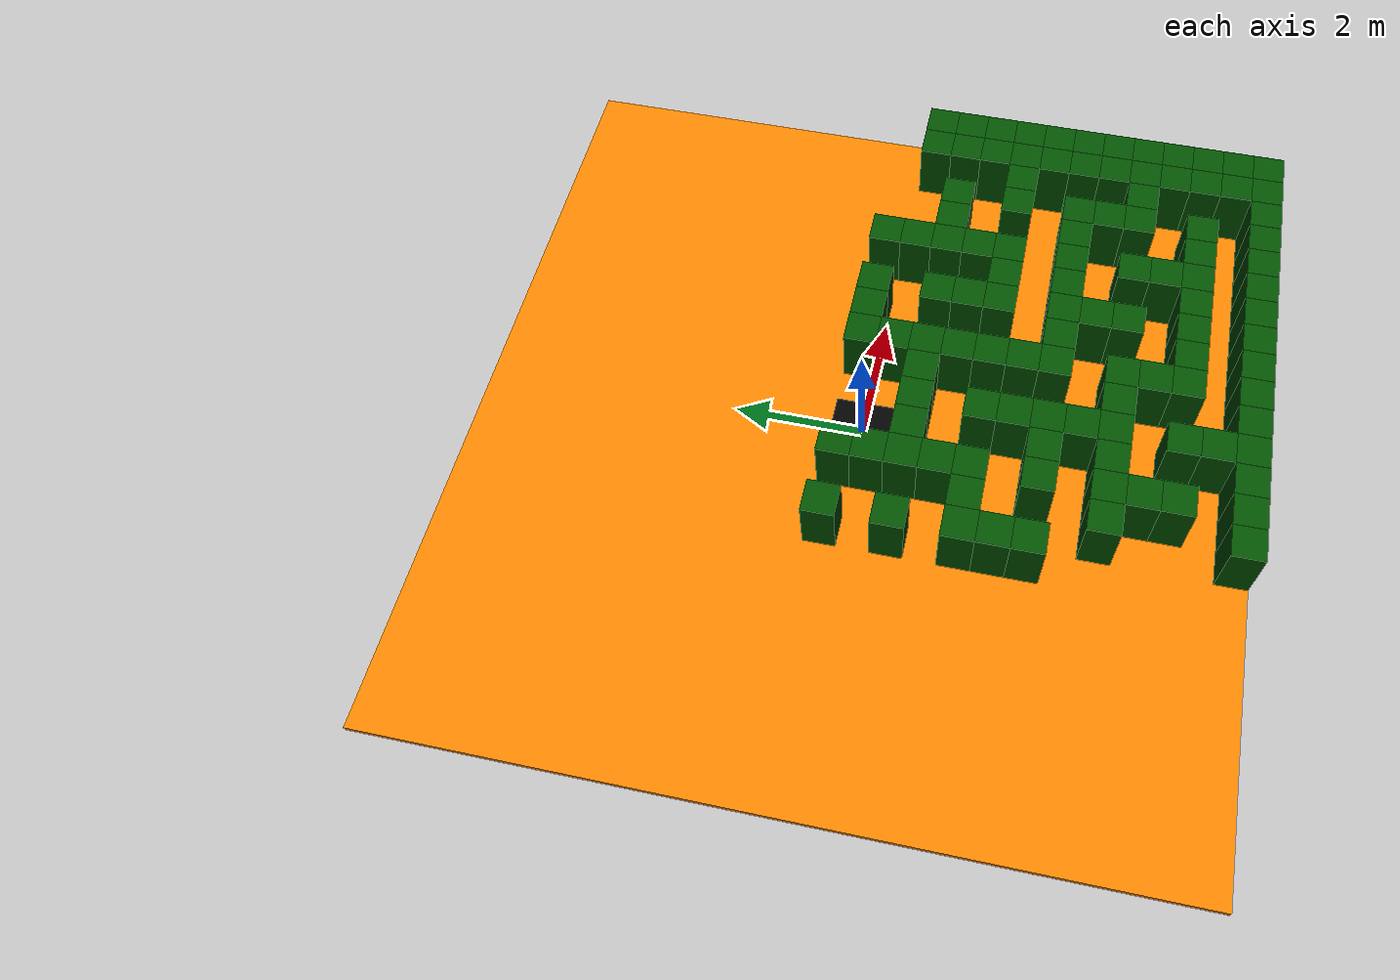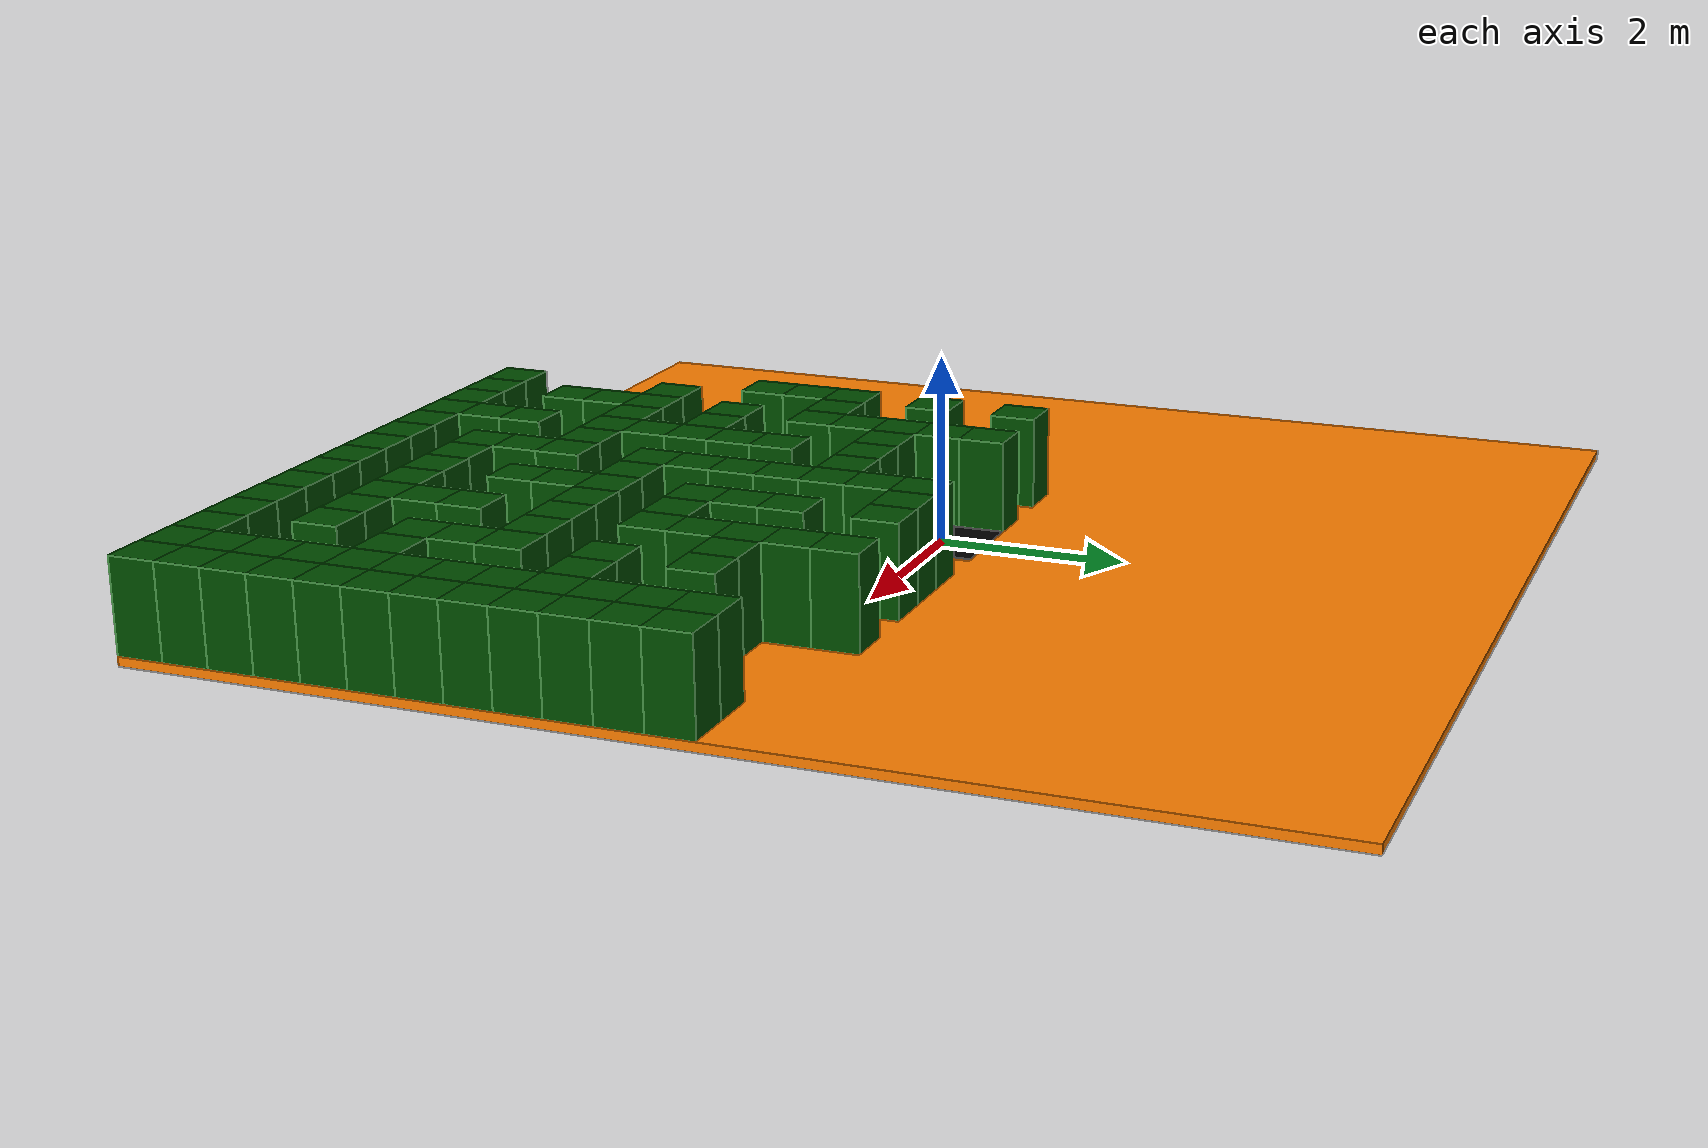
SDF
<sdf version="1.6">
 <world name="turtlebot3_maze">
  <model name="maze_floor_debug">
   <static>true</static>
   <pose>0 0 -0.05 0 0 0</pose>
   <link name="link">
    <collision name="collision"><geometry><box><size>12 12 0.1</size></box></geometry></collision>
    <visual name="orange_visual">
     <geometry><box><size>12 12 0.1</size></box></geometry>
     <material><ambient>1 0.5 0 1</ambient><diffuse>1 0.5 0 1</diffuse></material>
    </visual>
    <visual name="black_center">
     <pose>0 0 0.061 0 0 0</pose>
     <geometry><box><size>1 1 0.02</size></box></geometry>
     <material><ambient>0 0 0 1</ambient><diffuse>0 0 0 1</diffuse></material>
    </visual>
   </link>
  </model>
  <model name="wall_9_0">
   <static>true</static>
   <pose>-1.25 -5.75 0.5 0 0 0</pose>
   <link name="link">
    <collision name="collision"><geometry><box><size>0.5 0.5 1.0</size></box></geometry></collision>
    <visual name="visual">
     <geometry><box><size>0.5 0.5 1.0</size></box></geometry>
     <material><ambient>0 0.3 0 1</ambient><diffuse>0 0.3 0 1</diffuse></material>
    </visual>
   </link>
  </model>
  <model name="wall_10_0">
   <static>true</static>
   <pose>-0.75 -5.75 0.5 0 0 0</pose>
   <link name="link">
    <collision name="collision"><geometry><box><size>0.5 0.5 1.0</size></box></geometry></collision>
    <visual name="visual">
     <geometry><box><size>0.5 0.5 1.0</size></box></geometry>
     <material><ambient>0 0.3 0 1</ambient><diffuse>0 0.3 0 1</diffuse></material>
    </visual>
   </link>
  </model>
  <model name="wall_11_0">
   <static>true</static>
   <pose>-0.25 -5.75 0.5 0 0 0</pose>
   <link name="link">
    <collision name="collision"><geometry><box><size>0.5 0.5 1.0</size></box></geometry></collision>
    <visual name="visual">
     <geometry><box><size>0.5 0.5 1.0</size></box></geometry>
     <material><ambient>0 0.3 0 1</ambient><diffuse>0 0.3 0 1</diffuse></material>
    </visual>
   </link>
  </model>
  <model name="wall_12_0">
   <static>true</static>
   <pose>0.25 -5.75 0.5 0 0 0</pose>
   <link name="link">
    <collision name="collision"><geometry><box><size>0.5 0.5 1.0</size></box></geometry></collision>
    <visual name="visual">
     <geometry><box><size>0.5 0.5 1.0</size></box></geometry>
     <material><ambient>0 0.3 0 1</ambient><diffuse>0 0.3 0 1</diffuse></material>
    </visual>
   </link>
  </model>
  <model name="wall_13_0">
   <static>true</static>
   <pose>0.75 -5.75 0.5 0 0 0</pose>
   <link name="link">
    <collision name="collision"><geometry><box><size>0.5 0.5 1.0</size></box></geometry></collision>
    <visual name="visual">
     <geometry><box><size>0.5 0.5 1.0</size></box></geometry>
     <material><ambient>0 0.3 0 1</ambient><diffuse>0 0.3 0 1</diffuse></material>
    </visual>
   </link>
  </model>
  <model name="wall_14_0">
   <static>true</static>
   <pose>1.25 -5.75 0.5 0 0 0</pose>
   <link name="link">
    <collision name="collision"><geometry><box><size>0.5 0.5 1.0</size></box></geometry></collision>
    <visual name="visual">
     <geometry><box><size>0.5 0.5 1.0</size></box></geometry>
     <material><ambient>0 0.3 0 1</ambient><diffuse>0 0.3 0 1</diffuse></material>
    </visual>
   </link>
  </model>
  <model name="wall_15_0">
   <static>true</static>
   <pose>1.75 -5.75 0.5 0 0 0</pose>
   <link name="link">
    <collision name="collision"><geometry><box><size>0.5 0.5 1.0</size></box></geometry></collision>
    <visual name="visual">
     <geometry><box><size>0.5 0.5 1.0</size></box></geometry>
     <material><ambient>0 0.3 0 1</ambient><diffuse>0 0.3 0 1</diffuse></material>
    </visual>
   </link>
  </model>
  <model name="wall_16_0">
   <static>true</static>
   <pose>2.25 -5.75 0.5 0 0 0</pose>
   <link name="link">
    <collision name="collision"><geometry><box><size>0.5 0.5 1.0</size></box></geometry></collision>
    <visual name="visual">
     <geometry><box><size>0.5 0.5 1.0</size></box></geometry>
     <material><ambient>0 0.3 0 1</ambient><diffuse>0 0.3 0 1</diffuse></material>
    </visual>
   </link>
  </model>
  <model name="wall_17_0">
   <static>true</static>
   <pose>2.75 -5.75 0.5 0 0 0</pose>
   <link name="link">
    <collision name="collision"><geometry><box><size>0.5 0.5 1.0</size></box></geometry></collision>
    <visual name="visual">
     <geometry><box><size>0.5 0.5 1.0</size></box></geometry>
     <material><ambient>0 0.3 0 1</ambient><diffuse>0 0.3 0 1</diffuse></material>
    </visual>
   </link>
  </model>
  <model name="wall_18_0">
   <static>true</static>
   <pose>3.25 -5.75 0.5 0 0 0</pose>
   <link name="link">
    <collision name="collision"><geometry><box><size>0.5 0.5 1.0</size></box></geometry></collision>
    <visual name="visual">
     <geometry><box><size>0.5 0.5 1.0</size></box></geometry>
     <material><ambient>0 0.3 0 1</ambient><diffuse>0 0.3 0 1</diffuse></material>
    </visual>
   </link>
  </model>
  <model name="wall_19_0">
   <static>true</static>
   <pose>3.75 -5.75 0.5 0 0 0</pose>
   <link name="link">
    <collision name="collision"><geometry><box><size>0.5 0.5 1.0</size></box></geometry></collision>
    <visual name="visual">
     <geometry><box><size>0.5 0.5 1.0</size></box></geometry>
     <material><ambient>0 0.3 0 1</ambient><diffuse>0 0.3 0 1</diffuse></material>
    </visual>
   </link>
  </model>
  <model name="wall_20_0">
   <static>true</static>
   <pose>4.25 -5.75 0.5 0 0 0</pose>
   <link name="link">
    <collision name="collision"><geometry><box><size>0.5 0.5 1.0</size></box></geometry></collision>
    <visual name="visual">
     <geometry><box><size>0.5 0.5 1.0</size></box></geometry>
     <material><ambient>0 0.3 0 1</ambient><diffuse>0 0.3 0 1</diffuse></material>
    </visual>
   </link>
  </model>
  <model name="wall_21_0">
   <static>true</static>
   <pose>4.75 -5.75 0.5 0 0 0</pose>
   <link name="link">
    <collision name="collision"><geometry><box><size>0.5 0.5 1.0</size></box></geometry></collision>
    <visual name="visual">
     <geometry><box><size>0.5 0.5 1.0</size></box></geometry>
     <material><ambient>0 0.3 0 1</ambient><diffuse>0 0.3 0 1</diffuse></material>
    </visual>
   </link>
  </model>
  <model name="wall_22_0">
   <static>true</static>
   <pose>5.25 -5.75 0.5 0 0 0</pose>
   <link name="link">
    <collision name="collision"><geometry><box><size>0.5 0.5 1.0</size></box></geometry></collision>
    <visual name="visual">
     <geometry><box><size>0.5 0.5 1.0</size></box></geometry>
     <material><ambient>0 0.3 0 1</ambient><diffuse>0 0.3 0 1</diffuse></material>
    </visual>
   </link>
  </model>
  <model name="wall_23_0">
   <static>true</static>
   <pose>5.75 -5.75 0.5 0 0 0</pose>
   <link name="link">
    <collision name="collision"><geometry><box><size>0.5 0.5 1.0</size></box></geometry></collision>
    <visual name="visual">
     <geometry><box><size>0.5 0.5 1.0</size></box></geometry>
     <material><ambient>0 0.3 0 1</ambient><diffuse>0 0.3 0 1</diffuse></material>
    </visual>
   </link>
  </model>
  <model name="wall_12_1">
   <static>true</static>
   <pose>0.25 -5.25 0.5 0 0 0</pose>
   <link name="link">
    <collision name="collision"><geometry><box><size>0.5 0.5 1.0</size></box></geometry></collision>
    <visual name="visual">
     <geometry><box><size>0.5 0.5 1.0</size></box></geometry>
     <material><ambient>0 0.3 0 1</ambient><diffuse>0 0.3 0 1</diffuse></material>
    </visual>
   </link>
  </model>
  <model name="wall_22_1">
   <static>true</static>
   <pose>5.25 -5.25 0.5 0 0 0</pose>
   <link name="link">
    <collision name="collision"><geometry><box><size>0.5 0.5 1.0</size></box></geometry></collision>
    <visual name="visual">
     <geometry><box><size>0.5 0.5 1.0</size></box></geometry>
     <material><ambient>0 0.3 0 1</ambient><diffuse>0 0.3 0 1</diffuse></material>
    </visual>
   </link>
  </model>
  <model name="wall_23_1">
   <static>true</static>
   <pose>5.75 -5.25 0.5 0 0 0</pose>
   <link name="link">
    <collision name="collision"><geometry><box><size>0.5 0.5 1.0</size></box></geometry></collision>
    <visual name="visual">
     <geometry><box><size>0.5 0.5 1.0</size></box></geometry>
     <material><ambient>0 0.3 0 1</ambient><diffuse>0 0.3 0 1</diffuse></material>
    </visual>
   </link>
  </model>
  <model name="wall_10_2">
   <static>true</static>
   <pose>-0.75 -4.75 0.5 0 0 0</pose>
   <link name="link">
    <collision name="collision"><geometry><box><size>0.5 0.5 1.0</size></box></geometry></collision>
    <visual name="visual">
     <geometry><box><size>0.5 0.5 1.0</size></box></geometry>
     <material><ambient>0 0.3 0 1</ambient><diffuse>0 0.3 0 1</diffuse></material>
    </visual>
   </link>
  </model>
  <model name="wall_12_2">
   <static>true</static>
   <pose>0.25 -4.75 0.5 0 0 0</pose>
   <link name="link">
    <collision name="collision"><geometry><box><size>0.5 0.5 1.0</size></box></geometry></collision>
    <visual name="visual">
     <geometry><box><size>0.5 0.5 1.0</size></box></geometry>
     <material><ambient>0 0.3 0 1</ambient><diffuse>0 0.3 0 1</diffuse></material>
    </visual>
   </link>
  </model>
  <model name="wall_14_2">
   <static>true</static>
   <pose>1.25 -4.75 0.5 0 0 0</pose>
   <link name="link">
    <collision name="collision"><geometry><box><size>0.5 0.5 1.0</size></box></geometry></collision>
    <visual name="visual">
     <geometry><box><size>0.5 0.5 1.0</size></box></geometry>
     <material><ambient>0 0.3 0 1</ambient><diffuse>0 0.3 0 1</diffuse></material>
    </visual>
   </link>
  </model>
  <model name="wall_15_2">
   <static>true</static>
   <pose>1.75 -4.75 0.5 0 0 0</pose>
   <link name="link">
    <collision name="collision"><geometry><box><size>0.5 0.5 1.0</size></box></geometry></collision>
    <visual name="visual">
     <geometry><box><size>0.5 0.5 1.0</size></box></geometry>
     <material><ambient>0 0.3 0 1</ambient><diffuse>0 0.3 0 1</diffuse></material>
    </visual>
   </link>
  </model>
  <model name="wall_16_2">
   <static>true</static>
   <pose>2.25 -4.75 0.5 0 0 0</pose>
   <link name="link">
    <collision name="collision"><geometry><box><size>0.5 0.5 1.0</size></box></geometry></collision>
    <visual name="visual">
     <geometry><box><size>0.5 0.5 1.0</size></box></geometry>
     <material><ambient>0 0.3 0 1</ambient><diffuse>0 0.3 0 1</diffuse></material>
    </visual>
   </link>
  </model>
  <model name="wall_17_2">
   <static>true</static>
   <pose>2.75 -4.75 0.5 0 0 0</pose>
   <link name="link">
    <collision name="collision"><geometry><box><size>0.5 0.5 1.0</size></box></geometry></collision>
    <visual name="visual">
     <geometry><box><size>0.5 0.5 1.0</size></box></geometry>
     <material><ambient>0 0.3 0 1</ambient><diffuse>0 0.3 0 1</diffuse></material>
    </visual>
   </link>
  </model>
  <model name="wall_18_2">
   <static>true</static>
   <pose>3.25 -4.75 0.5 0 0 0</pose>
   <link name="link">
    <collision name="collision"><geometry><box><size>0.5 0.5 1.0</size></box></geometry></collision>
    <visual name="visual">
     <geometry><box><size>0.5 0.5 1.0</size></box></geometry>
     <material><ambient>0 0.3 0 1</ambient><diffuse>0 0.3 0 1</diffuse></material>
    </visual>
   </link>
  </model>
  <model name="wall_19_2">
   <static>true</static>
   <pose>3.75 -4.75 0.5 0 0 0</pose>
   <link name="link">
    <collision name="collision"><geometry><box><size>0.5 0.5 1.0</size></box></geometry></collision>
    <visual name="visual">
     <geometry><box><size>0.5 0.5 1.0</size></box></geometry>
     <material><ambient>0 0.3 0 1</ambient><diffuse>0 0.3 0 1</diffuse></material>
    </visual>
   </link>
  </model>
  <model name="wall_20_2">
   <static>true</static>
   <pose>4.25 -4.75 0.5 0 0 0</pose>
   <link name="link">
    <collision name="collision"><geometry><box><size>0.5 0.5 1.0</size></box></geometry></collision>
    <visual name="visual">
     <geometry><box><size>0.5 0.5 1.0</size></box></geometry>
     <material><ambient>0 0.3 0 1</ambient><diffuse>0 0.3 0 1</diffuse></material>
    </visual>
   </link>
  </model>
  <model name="wall_22_2">
   <static>true</static>
   <pose>5.25 -4.75 0.5 0 0 0</pose>
   <link name="link">
    <collision name="collision"><geometry><box><size>0.5 0.5 1.0</size></box></geometry></collision>
    <visual name="visual">
     <geometry><box><size>0.5 0.5 1.0</size></box></geometry>
     <material><ambient>0 0.3 0 1</ambient><diffuse>0 0.3 0 1</diffuse></material>
    </visual>
   </link>
  </model>
  <model name="wall_23_2">
   <static>true</static>
   <pose>5.75 -4.75 0.5 0 0 0</pose>
   <link name="link">
    <collision name="collision"><geometry><box><size>0.5 0.5 1.0</size></box></geometry></collision>
    <visual name="visual">
     <geometry><box><size>0.5 0.5 1.0</size></box></geometry>
     <material><ambient>0 0.3 0 1</ambient><diffuse>0 0.3 0 1</diffuse></material>
    </visual>
   </link>
  </model>
  <model name="wall_10_3">
   <static>true</static>
   <pose>-0.75 -4.25 0.5 0 0 0</pose>
   <link name="link">
    <collision name="collision"><geometry><box><size>0.5 0.5 1.0</size></box></geometry></collision>
    <visual name="visual">
     <geometry><box><size>0.5 0.5 1.0</size></box></geometry>
     <material><ambient>0 0.3 0 1</ambient><diffuse>0 0.3 0 1</diffuse></material>
    </visual>
   </link>
  </model>
  <model name="wall_14_3">
   <static>true</static>
   <pose>1.25 -4.25 0.5 0 0 0</pose>
   <link name="link">
    <collision name="collision"><geometry><box><size>0.5 0.5 1.0</size></box></geometry></collision>
    <visual name="visual">
     <geometry><box><size>0.5 0.5 1.0</size></box></geometry>
     <material><ambient>0 0.3 0 1</ambient><diffuse>0 0.3 0 1</diffuse></material>
    </visual>
   </link>
  </model>
  <model name="wall_18_3">
   <static>true</static>
   <pose>3.25 -4.25 0.5 0 0 0</pose>
   <link name="link">
    <collision name="collision"><geometry><box><size>0.5 0.5 1.0</size></box></geometry></collision>
    <visual name="visual">
     <geometry><box><size>0.5 0.5 1.0</size></box></geometry>
     <material><ambient>0 0.3 0 1</ambient><diffuse>0 0.3 0 1</diffuse></material>
    </visual>
   </link>
  </model>
  <model name="wall_22_3">
   <static>true</static>
   <pose>5.25 -4.25 0.5 0 0 0</pose>
   <link name="link">
    <collision name="collision"><geometry><box><size>0.5 0.5 1.0</size></box></geometry></collision>
    <visual name="visual">
     <geometry><box><size>0.5 0.5 1.0</size></box></geometry>
     <material><ambient>0 0.3 0 1</ambient><diffuse>0 0.3 0 1</diffuse></material>
    </visual>
   </link>
  </model>
  <model name="wall_23_3">
   <static>true</static>
   <pose>5.75 -4.25 0.5 0 0 0</pose>
   <link name="link">
    <collision name="collision"><geometry><box><size>0.5 0.5 1.0</size></box></geometry></collision>
    <visual name="visual">
     <geometry><box><size>0.5 0.5 1.0</size></box></geometry>
     <material><ambient>0 0.3 0 1</ambient><diffuse>0 0.3 0 1</diffuse></material>
    </visual>
   </link>
  </model>
  <model name="wall_9_4">
   <static>true</static>
   <pose>-1.25 -3.75 0.5 0 0 0</pose>
   <link name="link">
    <collision name="collision"><geometry><box><size>0.5 0.5 1.0</size></box></geometry></collision>
    <visual name="visual">
     <geometry><box><size>0.5 0.5 1.0</size></box></geometry>
     <material><ambient>0 0.3 0 1</ambient><diffuse>0 0.3 0 1</diffuse></material>
    </visual>
   </link>
  </model>
  <model name="wall_10_4">
   <static>true</static>
   <pose>-0.75 -3.75 0.5 0 0 0</pose>
   <link name="link">
    <collision name="collision"><geometry><box><size>0.5 0.5 1.0</size></box></geometry></collision>
    <visual name="visual">
     <geometry><box><size>0.5 0.5 1.0</size></box></geometry>
     <material><ambient>0 0.3 0 1</ambient><diffuse>0 0.3 0 1</diffuse></material>
    </visual>
   </link>
  </model>
  <model name="wall_11_4">
   <static>true</static>
   <pose>-0.25 -3.75 0.5 0 0 0</pose>
   <link name="link">
    <collision name="collision"><geometry><box><size>0.5 0.5 1.0</size></box></geometry></collision>
    <visual name="visual">
     <geometry><box><size>0.5 0.5 1.0</size></box></geometry>
     <material><ambient>0 0.3 0 1</ambient><diffuse>0 0.3 0 1</diffuse></material>
    </visual>
   </link>
  </model>
  <model name="wall_12_4">
   <static>true</static>
   <pose>0.25 -3.75 0.5 0 0 0</pose>
   <link name="link">
    <collision name="collision"><geometry><box><size>0.5 0.5 1.0</size></box></geometry></collision>
    <visual name="visual">
     <geometry><box><size>0.5 0.5 1.0</size></box></geometry>
     <material><ambient>0 0.3 0 1</ambient><diffuse>0 0.3 0 1</diffuse></material>
    </visual>
   </link>
  </model>
  <model name="wall_13_4">
   <static>true</static>
   <pose>0.75 -3.75 0.5 0 0 0</pose>
   <link name="link">
    <collision name="collision"><geometry><box><size>0.5 0.5 1.0</size></box></geometry></collision>
    <visual name="visual">
     <geometry><box><size>0.5 0.5 1.0</size></box></geometry>
     <material><ambient>0 0.3 0 1</ambient><diffuse>0 0.3 0 1</diffuse></material>
    </visual>
   </link>
  </model>
  <model name="wall_14_4">
   <static>true</static>
   <pose>1.25 -3.75 0.5 0 0 0</pose>
   <link name="link">
    <collision name="collision"><geometry><box><size>0.5 0.5 1.0</size></box></geometry></collision>
    <visual name="visual">
     <geometry><box><size>0.5 0.5 1.0</size></box></geometry>
     <material><ambient>0 0.3 0 1</ambient><diffuse>0 0.3 0 1</diffuse></material>
    </visual>
   </link>
  </model>
  <model name="wall_16_4">
   <static>true</static>
   <pose>2.25 -3.75 0.5 0 0 0</pose>
   <link name="link">
    <collision name="collision"><geometry><box><size>0.5 0.5 1.0</size></box></geometry></collision>
    <visual name="visual">
     <geometry><box><size>0.5 0.5 1.0</size></box></geometry>
     <material><ambient>0 0.3 0 1</ambient><diffuse>0 0.3 0 1</diffuse></material>
    </visual>
   </link>
  </model>
  <model name="wall_18_4">
   <static>true</static>
   <pose>3.25 -3.75 0.5 0 0 0</pose>
   <link name="link">
    <collision name="collision"><geometry><box><size>0.5 0.5 1.0</size></box></geometry></collision>
    <visual name="visual">
     <geometry><box><size>0.5 0.5 1.0</size></box></geometry>
     <material><ambient>0 0.3 0 1</ambient><diffuse>0 0.3 0 1</diffuse></material>
    </visual>
   </link>
  </model>
  <model name="wall_20_4">
   <static>true</static>
   <pose>4.25 -3.75 0.5 0 0 0</pose>
   <link name="link">
    <collision name="collision"><geometry><box><size>0.5 0.5 1.0</size></box></geometry></collision>
    <visual name="visual">
     <geometry><box><size>0.5 0.5 1.0</size></box></geometry>
     <material><ambient>0 0.3 0 1</ambient><diffuse>0 0.3 0 1</diffuse></material>
    </visual>
   </link>
  </model>
  <model name="wall_21_4">
   <static>true</static>
   <pose>4.75 -3.75 0.5 0 0 0</pose>
   <link name="link">
    <collision name="collision"><geometry><box><size>0.5 0.5 1.0</size></box></geometry></collision>
    <visual name="visual">
     <geometry><box><size>0.5 0.5 1.0</size></box></geometry>
     <material><ambient>0 0.3 0 1</ambient><diffuse>0 0.3 0 1</diffuse></material>
    </visual>
   </link>
  </model>
  <model name="wall_22_4">
   <static>true</static>
   <pose>5.25 -3.75 0.5 0 0 0</pose>
   <link name="link">
    <collision name="collision"><geometry><box><size>0.5 0.5 1.0</size></box></geometry></collision>
    <visual name="visual">
     <geometry><box><size>0.5 0.5 1.0</size></box></geometry>
     <material><ambient>0 0.3 0 1</ambient><diffuse>0 0.3 0 1</diffuse></material>
    </visual>
   </link>
  </model>
  <model name="wall_23_4">
   <static>true</static>
   <pose>5.75 -3.75 0.5 0 0 0</pose>
   <link name="link">
    <collision name="collision"><geometry><box><size>0.5 0.5 1.0</size></box></geometry></collision>
    <visual name="visual">
     <geometry><box><size>0.5 0.5 1.0</size></box></geometry>
     <material><ambient>0 0.3 0 1</ambient><diffuse>0 0.3 0 1</diffuse></material>
    </visual>
   </link>
  </model>
  <model name="wall_12_5">
   <static>true</static>
   <pose>0.25 -3.25 0.5 0 0 0</pose>
   <link name="link">
    <collision name="collision"><geometry><box><size>0.5 0.5 1.0</size></box></geometry></collision>
    <visual name="visual">
     <geometry><box><size>0.5 0.5 1.0</size></box></geometry>
     <material><ambient>0 0.3 0 1</ambient><diffuse>0 0.3 0 1</diffuse></material>
    </visual>
   </link>
  </model>
  <model name="wall_16_5">
   <static>true</static>
   <pose>2.25 -3.25 0.5 0 0 0</pose>
   <link name="link">
    <collision name="collision"><geometry><box><size>0.5 0.5 1.0</size></box></geometry></collision>
    <visual name="visual">
     <geometry><box><size>0.5 0.5 1.0</size></box></geometry>
     <material><ambient>0 0.3 0 1</ambient><diffuse>0 0.3 0 1</diffuse></material>
    </visual>
   </link>
  </model>
  <model name="wall_20_5">
   <static>true</static>
   <pose>4.25 -3.25 0.5 0 0 0</pose>
   <link name="link">
    <collision name="collision"><geometry><box><size>0.5 0.5 1.0</size></box></geometry></collision>
    <visual name="visual">
     <geometry><box><size>0.5 0.5 1.0</size></box></geometry>
     <material><ambient>0 0.3 0 1</ambient><diffuse>0 0.3 0 1</diffuse></material>
    </visual>
   </link>
  </model>
  <model name="wall_22_5">
   <static>true</static>
   <pose>5.25 -3.25 0.5 0 0 0</pose>
   <link name="link">
    <collision name="collision"><geometry><box><size>0.5 0.5 1.0</size></box></geometry></collision>
    <visual name="visual">
     <geometry><box><size>0.5 0.5 1.0</size></box></geometry>
     <material><ambient>0 0.3 0 1</ambient><diffuse>0 0.3 0 1</diffuse></material>
    </visual>
   </link>
  </model>
  <model name="wall_23_5">
   <static>true</static>
   <pose>5.75 -3.25 0.5 0 0 0</pose>
   <link name="link">
    <collision name="collision"><geometry><box><size>0.5 0.5 1.0</size></box></geometry></collision>
    <visual name="visual">
     <geometry><box><size>0.5 0.5 1.0</size></box></geometry>
     <material><ambient>0 0.3 0 1</ambient><diffuse>0 0.3 0 1</diffuse></material>
    </visual>
   </link>
  </model>
  <model name="wall_8_6">
   <static>true</static>
   <pose>-1.75 -2.75 0.5 0 0 0</pose>
   <link name="link">
    <collision name="collision"><geometry><box><size>0.5 0.5 1.0</size></box></geometry></collision>
    <visual name="visual">
     <geometry><box><size>0.5 0.5 1.0</size></box></geometry>
     <material><ambient>0 0.3 0 1</ambient><diffuse>0 0.3 0 1</diffuse></material>
    </visual>
   </link>
  </model>
  <model name="wall_10_6">
   <static>true</static>
   <pose>-0.75 -2.75 0.5 0 0 0</pose>
   <link name="link">
    <collision name="collision"><geometry><box><size>0.5 0.5 1.0</size></box></geometry></collision>
    <visual name="visual">
     <geometry><box><size>0.5 0.5 1.0</size></box></geometry>
     <material><ambient>0 0.3 0 1</ambient><diffuse>0 0.3 0 1</diffuse></material>
    </visual>
   </link>
  </model>
  <model name="wall_11_6">
   <static>true</static>
   <pose>-0.25 -2.75 0.5 0 0 0</pose>
   <link name="link">
    <collision name="collision"><geometry><box><size>0.5 0.5 1.0</size></box></geometry></collision>
    <visual name="visual">
     <geometry><box><size>0.5 0.5 1.0</size></box></geometry>
     <material><ambient>0 0.3 0 1</ambient><diffuse>0 0.3 0 1</diffuse></material>
    </visual>
   </link>
  </model>
  <model name="wall_12_6">
   <static>true</static>
   <pose>0.25 -2.75 0.5 0 0 0</pose>
   <link name="link">
    <collision name="collision"><geometry><box><size>0.5 0.5 1.0</size></box></geometry></collision>
    <visual name="visual">
     <geometry><box><size>0.5 0.5 1.0</size></box></geometry>
     <material><ambient>0 0.3 0 1</ambient><diffuse>0 0.3 0 1</diffuse></material>
    </visual>
   </link>
  </model>
  <model name="wall_14_6">
   <static>true</static>
   <pose>1.25 -2.75 0.5 0 0 0</pose>
   <link name="link">
    <collision name="collision"><geometry><box><size>0.5 0.5 1.0</size></box></geometry></collision>
    <visual name="visual">
     <geometry><box><size>0.5 0.5 1.0</size></box></geometry>
     <material><ambient>0 0.3 0 1</ambient><diffuse>0 0.3 0 1</diffuse></material>
    </visual>
   </link>
  </model>
  <model name="wall_15_6">
   <static>true</static>
   <pose>1.75 -2.75 0.5 0 0 0</pose>
   <link name="link">
    <collision name="collision"><geometry><box><size>0.5 0.5 1.0</size></box></geometry></collision>
    <visual name="visual">
     <geometry><box><size>0.5 0.5 1.0</size></box></geometry>
     <material><ambient>0 0.3 0 1</ambient><diffuse>0 0.3 0 1</diffuse></material>
    </visual>
   </link>
  </model>
  <model name="wall_16_6">
   <static>true</static>
   <pose>2.25 -2.75 0.5 0 0 0</pose>
   <link name="link">
    <collision name="collision"><geometry><box><size>0.5 0.5 1.0</size></box></geometry></collision>
    <visual name="visual">
     <geometry><box><size>0.5 0.5 1.0</size></box></geometry>
     <material><ambient>0 0.3 0 1</ambient><diffuse>0 0.3 0 1</diffuse></material>
    </visual>
   </link>
  </model>
  <model name="wall_17_6">
   <static>true</static>
   <pose>2.75 -2.75 0.5 0 0 0</pose>
   <link name="link">
    <collision name="collision"><geometry><box><size>0.5 0.5 1.0</size></box></geometry></collision>
    <visual name="visual">
     <geometry><box><size>0.5 0.5 1.0</size></box></geometry>
     <material><ambient>0 0.3 0 1</ambient><diffuse>0 0.3 0 1</diffuse></material>
    </visual>
   </link>
  </model>
  <model name="wall_18_6">
   <static>true</static>
   <pose>3.25 -2.75 0.5 0 0 0</pose>
   <link name="link">
    <collision name="collision"><geometry><box><size>0.5 0.5 1.0</size></box></geometry></collision>
    <visual name="visual">
     <geometry><box><size>0.5 0.5 1.0</size></box></geometry>
     <material><ambient>0 0.3 0 1</ambient><diffuse>0 0.3 0 1</diffuse></material>
    </visual>
   </link>
  </model>
  <model name="wall_19_6">
   <static>true</static>
   <pose>3.75 -2.75 0.5 0 0 0</pose>
   <link name="link">
    <collision name="collision"><geometry><box><size>0.5 0.5 1.0</size></box></geometry></collision>
    <visual name="visual">
     <geometry><box><size>0.5 0.5 1.0</size></box></geometry>
     <material><ambient>0 0.3 0 1</ambient><diffuse>0 0.3 0 1</diffuse></material>
    </visual>
   </link>
  </model>
  <model name="wall_20_6">
   <static>true</static>
   <pose>4.25 -2.75 0.5 0 0 0</pose>
   <link name="link">
    <collision name="collision"><geometry><box><size>0.5 0.5 1.0</size></box></geometry></collision>
    <visual name="visual">
     <geometry><box><size>0.5 0.5 1.0</size></box></geometry>
     <material><ambient>0 0.3 0 1</ambient><diffuse>0 0.3 0 1</diffuse></material>
    </visual>
   </link>
  </model>
  <model name="wall_22_6">
   <static>true</static>
   <pose>5.25 -2.75 0.5 0 0 0</pose>
   <link name="link">
    <collision name="collision"><geometry><box><size>0.5 0.5 1.0</size></box></geometry></collision>
    <visual name="visual">
     <geometry><box><size>0.5 0.5 1.0</size></box></geometry>
     <material><ambient>0 0.3 0 1</ambient><diffuse>0 0.3 0 1</diffuse></material>
    </visual>
   </link>
  </model>
  <model name="wall_23_6">
   <static>true</static>
   <pose>5.75 -2.75 0.5 0 0 0</pose>
   <link name="link">
    <collision name="collision"><geometry><box><size>0.5 0.5 1.0</size></box></geometry></collision>
    <visual name="visual">
     <geometry><box><size>0.5 0.5 1.0</size></box></geometry>
     <material><ambient>0 0.3 0 1</ambient><diffuse>0 0.3 0 1</diffuse></material>
    </visual>
   </link>
  </model>
  <model name="wall_8_7">
   <static>true</static>
   <pose>-1.75 -2.25 0.5 0 0 0</pose>
   <link name="link">
    <collision name="collision"><geometry><box><size>0.5 0.5 1.0</size></box></geometry></collision>
    <visual name="visual">
     <geometry><box><size>0.5 0.5 1.0</size></box></geometry>
     <material><ambient>0 0.3 0 1</ambient><diffuse>0 0.3 0 1</diffuse></material>
    </visual>
   </link>
  </model>
  <model name="wall_12_7">
   <static>true</static>
   <pose>0.25 -2.25 0.5 0 0 0</pose>
   <link name="link">
    <collision name="collision"><geometry><box><size>0.5 0.5 1.0</size></box></geometry></collision>
    <visual name="visual">
     <geometry><box><size>0.5 0.5 1.0</size></box></geometry>
     <material><ambient>0 0.3 0 1</ambient><diffuse>0 0.3 0 1</diffuse></material>
    </visual>
   </link>
  </model>
  <model name="wall_14_7">
   <static>true</static>
   <pose>1.25 -2.25 0.5 0 0 0</pose>
   <link name="link">
    <collision name="collision"><geometry><box><size>0.5 0.5 1.0</size></box></geometry></collision>
    <visual name="visual">
     <geometry><box><size>0.5 0.5 1.0</size></box></geometry>
     <material><ambient>0 0.3 0 1</ambient><diffuse>0 0.3 0 1</diffuse></material>
    </visual>
   </link>
  </model>
  <model name="wall_22_7">
   <static>true</static>
   <pose>5.25 -2.25 0.5 0 0 0</pose>
   <link name="link">
    <collision name="collision"><geometry><box><size>0.5 0.5 1.0</size></box></geometry></collision>
    <visual name="visual">
     <geometry><box><size>0.5 0.5 1.0</size></box></geometry>
     <material><ambient>0 0.3 0 1</ambient><diffuse>0 0.3 0 1</diffuse></material>
    </visual>
   </link>
  </model>
  <model name="wall_23_7">
   <static>true</static>
   <pose>5.75 -2.25 0.5 0 0 0</pose>
   <link name="link">
    <collision name="collision"><geometry><box><size>0.5 0.5 1.0</size></box></geometry></collision>
    <visual name="visual">
     <geometry><box><size>0.5 0.5 1.0</size></box></geometry>
     <material><ambient>0 0.3 0 1</ambient><diffuse>0 0.3 0 1</diffuse></material>
    </visual>
   </link>
  </model>
  <model name="wall_8_8">
   <static>true</static>
   <pose>-1.75 -1.75 0.5 0 0 0</pose>
   <link name="link">
    <collision name="collision"><geometry><box><size>0.5 0.5 1.0</size></box></geometry></collision>
    <visual name="visual">
     <geometry><box><size>0.5 0.5 1.0</size></box></geometry>
     <material><ambient>0 0.3 0 1</ambient><diffuse>0 0.3 0 1</diffuse></material>
    </visual>
   </link>
  </model>
  <model name="wall_9_8">
   <static>true</static>
   <pose>-1.25 -1.75 0.5 0 0 0</pose>
   <link name="link">
    <collision name="collision"><geometry><box><size>0.5 0.5 1.0</size></box></geometry></collision>
    <visual name="visual">
     <geometry><box><size>0.5 0.5 1.0</size></box></geometry>
     <material><ambient>0 0.3 0 1</ambient><diffuse>0 0.3 0 1</diffuse></material>
    </visual>
   </link>
  </model>
  <model name="wall_10_8">
   <static>true</static>
   <pose>-0.75 -1.75 0.5 0 0 0</pose>
   <link name="link">
    <collision name="collision"><geometry><box><size>0.5 0.5 1.0</size></box></geometry></collision>
    <visual name="visual">
     <geometry><box><size>0.5 0.5 1.0</size></box></geometry>
     <material><ambient>0 0.3 0 1</ambient><diffuse>0 0.3 0 1</diffuse></material>
    </visual>
   </link>
  </model>
  <model name="wall_12_8">
   <static>true</static>
   <pose>0.25 -1.75 0.5 0 0 0</pose>
   <link name="link">
    <collision name="collision"><geometry><box><size>0.5 0.5 1.0</size></box></geometry></collision>
    <visual name="visual">
     <geometry><box><size>0.5 0.5 1.0</size></box></geometry>
     <material><ambient>0 0.3 0 1</ambient><diffuse>0 0.3 0 1</diffuse></material>
    </visual>
   </link>
  </model>
  <model name="wall_14_8">
   <static>true</static>
   <pose>1.25 -1.75 0.5 0 0 0</pose>
   <link name="link">
    <collision name="collision"><geometry><box><size>0.5 0.5 1.0</size></box></geometry></collision>
    <visual name="visual">
     <geometry><box><size>0.5 0.5 1.0</size></box></geometry>
     <material><ambient>0 0.3 0 1</ambient><diffuse>0 0.3 0 1</diffuse></material>
    </visual>
   </link>
  </model>
  <model name="wall_16_8">
   <static>true</static>
   <pose>2.25 -1.75 0.5 0 0 0</pose>
   <link name="link">
    <collision name="collision"><geometry><box><size>0.5 0.5 1.0</size></box></geometry></collision>
    <visual name="visual">
     <geometry><box><size>0.5 0.5 1.0</size></box></geometry>
     <material><ambient>0 0.3 0 1</ambient><diffuse>0 0.3 0 1</diffuse></material>
    </visual>
   </link>
  </model>
  <model name="wall_17_8">
   <static>true</static>
   <pose>2.75 -1.75 0.5 0 0 0</pose>
   <link name="link">
    <collision name="collision"><geometry><box><size>0.5 0.5 1.0</size></box></geometry></collision>
    <visual name="visual">
     <geometry><box><size>0.5 0.5 1.0</size></box></geometry>
     <material><ambient>0 0.3 0 1</ambient><diffuse>0 0.3 0 1</diffuse></material>
    </visual>
   </link>
  </model>
  <model name="wall_18_8">
   <static>true</static>
   <pose>3.25 -1.75 0.5 0 0 0</pose>
   <link name="link">
    <collision name="collision"><geometry><box><size>0.5 0.5 1.0</size></box></geometry></collision>
    <visual name="visual">
     <geometry><box><size>0.5 0.5 1.0</size></box></geometry>
     <material><ambient>0 0.3 0 1</ambient><diffuse>0 0.3 0 1</diffuse></material>
    </visual>
   </link>
  </model>
  <model name="wall_20_8">
   <static>true</static>
   <pose>4.25 -1.75 0.5 0 0 0</pose>
   <link name="link">
    <collision name="collision"><geometry><box><size>0.5 0.5 1.0</size></box></geometry></collision>
    <visual name="visual">
     <geometry><box><size>0.5 0.5 1.0</size></box></geometry>
     <material><ambient>0 0.3 0 1</ambient><diffuse>0 0.3 0 1</diffuse></material>
    </visual>
   </link>
  </model>
  <model name="wall_21_8">
   <static>true</static>
   <pose>4.75 -1.75 0.5 0 0 0</pose>
   <link name="link">
    <collision name="collision"><geometry><box><size>0.5 0.5 1.0</size></box></geometry></collision>
    <visual name="visual">
     <geometry><box><size>0.5 0.5 1.0</size></box></geometry>
     <material><ambient>0 0.3 0 1</ambient><diffuse>0 0.3 0 1</diffuse></material>
    </visual>
   </link>
  </model>
  <model name="wall_22_8">
   <static>true</static>
   <pose>5.25 -1.75 0.5 0 0 0</pose>
   <link name="link">
    <collision name="collision"><geometry><box><size>0.5 0.5 1.0</size></box></geometry></collision>
    <visual name="visual">
     <geometry><box><size>0.5 0.5 1.0</size></box></geometry>
     <material><ambient>0 0.3 0 1</ambient><diffuse>0 0.3 0 1</diffuse></material>
    </visual>
   </link>
  </model>
  <model name="wall_23_8">
   <static>true</static>
   <pose>5.75 -1.75 0.5 0 0 0</pose>
   <link name="link">
    <collision name="collision"><geometry><box><size>0.5 0.5 1.0</size></box></geometry></collision>
    <visual name="visual">
     <geometry><box><size>0.5 0.5 1.0</size></box></geometry>
     <material><ambient>0 0.3 0 1</ambient><diffuse>0 0.3 0 1</diffuse></material>
    </visual>
   </link>
  </model>
  <model name="wall_10_9">
   <static>true</static>
   <pose>-0.75 -1.25 0.5 0 0 0</pose>
   <link name="link">
    <collision name="collision"><geometry><box><size>0.5 0.5 1.0</size></box></geometry></collision>
    <visual name="visual">
     <geometry><box><size>0.5 0.5 1.0</size></box></geometry>
     <material><ambient>0 0.3 0 1</ambient><diffuse>0 0.3 0 1</diffuse></material>
    </visual>
   </link>
  </model>
  <model name="wall_14_9">
   <static>true</static>
   <pose>1.25 -1.25 0.5 0 0 0</pose>
   <link name="link">
    <collision name="collision"><geometry><box><size>0.5 0.5 1.0</size></box></geometry></collision>
    <visual name="visual">
     <geometry><box><size>0.5 0.5 1.0</size></box></geometry>
     <material><ambient>0 0.3 0 1</ambient><diffuse>0 0.3 0 1</diffuse></material>
    </visual>
   </link>
  </model>
  <model name="wall_16_9">
   <static>true</static>
   <pose>2.25 -1.25 0.5 0 0 0</pose>
   <link name="link">
    <collision name="collision"><geometry><box><size>0.5 0.5 1.0</size></box></geometry></collision>
    <visual name="visual">
     <geometry><box><size>0.5 0.5 1.0</size></box></geometry>
     <material><ambient>0 0.3 0 1</ambient><diffuse>0 0.3 0 1</diffuse></material>
    </visual>
   </link>
  </model>
  <model name="wall_18_9">
   <static>true</static>
   <pose>3.25 -1.25 0.5 0 0 0</pose>
   <link name="link">
    <collision name="collision"><geometry><box><size>0.5 0.5 1.0</size></box></geometry></collision>
    <visual name="visual">
     <geometry><box><size>0.5 0.5 1.0</size></box></geometry>
     <material><ambient>0 0.3 0 1</ambient><diffuse>0 0.3 0 1</diffuse></material>
    </visual>
   </link>
  </model>
  <model name="wall_22_9">
   <static>true</static>
   <pose>5.25 -1.25 0.5 0 0 0</pose>
   <link name="link">
    <collision name="collision"><geometry><box><size>0.5 0.5 1.0</size></box></geometry></collision>
    <visual name="visual">
     <geometry><box><size>0.5 0.5 1.0</size></box></geometry>
     <material><ambient>0 0.3 0 1</ambient><diffuse>0 0.3 0 1</diffuse></material>
    </visual>
   </link>
  </model>
  <model name="wall_23_9">
   <static>true</static>
   <pose>5.75 -1.25 0.5 0 0 0</pose>
   <link name="link">
    <collision name="collision"><geometry><box><size>0.5 0.5 1.0</size></box></geometry></collision>
    <visual name="visual">
     <geometry><box><size>0.5 0.5 1.0</size></box></geometry>
     <material><ambient>0 0.3 0 1</ambient><diffuse>0 0.3 0 1</diffuse></material>
    </visual>
   </link>
  </model>
  <model name="wall_8_10">
   <static>true</static>
   <pose>-1.75 -0.75 0.5 0 0 0</pose>
   <link name="link">
    <collision name="collision"><geometry><box><size>0.5 0.5 1.0</size></box></geometry></collision>
    <visual name="visual">
     <geometry><box><size>0.5 0.5 1.0</size></box></geometry>
     <material><ambient>0 0.3 0 1</ambient><diffuse>0 0.3 0 1</diffuse></material>
    </visual>
   </link>
  </model>
  <model name="wall_10_10">
   <static>true</static>
   <pose>-0.75 -0.75 0.5 0 0 0</pose>
   <link name="link">
    <collision name="collision"><geometry><box><size>0.5 0.5 1.0</size></box></geometry></collision>
    <visual name="visual">
     <geometry><box><size>0.5 0.5 1.0</size></box></geometry>
     <material><ambient>0 0.3 0 1</ambient><diffuse>0 0.3 0 1</diffuse></material>
    </visual>
   </link>
  </model>
  <model name="wall_11_10">
   <static>true</static>
   <pose>-0.25 -0.75 0.5 0 0 0</pose>
   <link name="link">
    <collision name="collision"><geometry><box><size>0.5 0.5 1.0</size></box></geometry></collision>
    <visual name="visual">
     <geometry><box><size>0.5 0.5 1.0</size></box></geometry>
     <material><ambient>0 0.3 0 1</ambient><diffuse>0 0.3 0 1</diffuse></material>
    </visual>
   </link>
  </model>
  <model name="wall_12_10">
   <static>true</static>
   <pose>0.25 -0.75 0.5 0 0 0</pose>
   <link name="link">
    <collision name="collision"><geometry><box><size>0.5 0.5 1.0</size></box></geometry></collision>
    <visual name="visual">
     <geometry><box><size>0.5 0.5 1.0</size></box></geometry>
     <material><ambient>0 0.3 0 1</ambient><diffuse>0 0.3 0 1</diffuse></material>
    </visual>
   </link>
  </model>
  <model name="wall_13_10">
   <static>true</static>
   <pose>0.75 -0.75 0.5 0 0 0</pose>
   <link name="link">
    <collision name="collision"><geometry><box><size>0.5 0.5 1.0</size></box></geometry></collision>
    <visual name="visual">
     <geometry><box><size>0.5 0.5 1.0</size></box></geometry>
     <material><ambient>0 0.3 0 1</ambient><diffuse>0 0.3 0 1</diffuse></material>
    </visual>
   </link>
  </model>
  <model name="wall_14_10">
   <static>true</static>
   <pose>1.25 -0.75 0.5 0 0 0</pose>
   <link name="link">
    <collision name="collision"><geometry><box><size>0.5 0.5 1.0</size></box></geometry></collision>
    <visual name="visual">
     <geometry><box><size>0.5 0.5 1.0</size></box></geometry>
     <material><ambient>0 0.3 0 1</ambient><diffuse>0 0.3 0 1</diffuse></material>
    </visual>
   </link>
  </model>
  <model name="wall_16_10">
   <static>true</static>
   <pose>2.25 -0.75 0.5 0 0 0</pose>
   <link name="link">
    <collision name="collision"><geometry><box><size>0.5 0.5 1.0</size></box></geometry></collision>
    <visual name="visual">
     <geometry><box><size>0.5 0.5 1.0</size></box></geometry>
     <material><ambient>0 0.3 0 1</ambient><diffuse>0 0.3 0 1</diffuse></material>
    </visual>
   </link>
  </model>
  <model name="wall_18_10">
   <static>true</static>
   <pose>3.25 -0.75 0.5 0 0 0</pose>
   <link name="link">
    <collision name="collision"><geometry><box><size>0.5 0.5 1.0</size></box></geometry></collision>
    <visual name="visual">
     <geometry><box><size>0.5 0.5 1.0</size></box></geometry>
     <material><ambient>0 0.3 0 1</ambient><diffuse>0 0.3 0 1</diffuse></material>
    </visual>
   </link>
  </model>
  <model name="wall_19_10">
   <static>true</static>
   <pose>3.75 -0.75 0.5 0 0 0</pose>
   <link name="link">
    <collision name="collision"><geometry><box><size>0.5 0.5 1.0</size></box></geometry></collision>
    <visual name="visual">
     <geometry><box><size>0.5 0.5 1.0</size></box></geometry>
     <material><ambient>0 0.3 0 1</ambient><diffuse>0 0.3 0 1</diffuse></material>
    </visual>
   </link>
  </model>
  <model name="wall_20_10">
   <static>true</static>
   <pose>4.25 -0.75 0.5 0 0 0</pose>
   <link name="link">
    <collision name="collision"><geometry><box><size>0.5 0.5 1.0</size></box></geometry></collision>
    <visual name="visual">
     <geometry><box><size>0.5 0.5 1.0</size></box></geometry>
     <material><ambient>0 0.3 0 1</ambient><diffuse>0 0.3 0 1</diffuse></material>
    </visual>
   </link>
  </model>
  <model name="wall_22_10">
   <static>true</static>
   <pose>5.25 -0.75 0.5 0 0 0</pose>
   <link name="link">
    <collision name="collision"><geometry><box><size>0.5 0.5 1.0</size></box></geometry></collision>
    <visual name="visual">
     <geometry><box><size>0.5 0.5 1.0</size></box></geometry>
     <material><ambient>0 0.3 0 1</ambient><diffuse>0 0.3 0 1</diffuse></material>
    </visual>
   </link>
  </model>
  <model name="wall_23_10">
   <static>true</static>
   <pose>5.75 -0.75 0.5 0 0 0</pose>
   <link name="link">
    <collision name="collision"><geometry><box><size>0.5 0.5 1.0</size></box></geometry></collision>
    <visual name="visual">
     <geometry><box><size>0.5 0.5 1.0</size></box></geometry>
     <material><ambient>0 0.3 0 1</ambient><diffuse>0 0.3 0 1</diffuse></material>
    </visual>
   </link>
  </model>
  <model name="wall_10_11">
   <static>true</static>
   <pose>-0.75 -0.25 0.5 0 0 0</pose>
   <link name="link">
    <collision name="collision"><geometry><box><size>0.5 0.5 1.0</size></box></geometry></collision>
    <visual name="visual">
     <geometry><box><size>0.5 0.5 1.0</size></box></geometry>
     <material><ambient>0 0.3 0 1</ambient><diffuse>0 0.3 0 1</diffuse></material>
    </visual>
   </link>
  </model>
  <model name="wall_14_11">
   <static>true</static>
   <pose>1.25 -0.25 0.5 0 0 0</pose>
   <link name="link">
    <collision name="collision"><geometry><box><size>0.5 0.5 1.0</size></box></geometry></collision>
    <visual name="visual">
     <geometry><box><size>0.5 0.5 1.0</size></box></geometry>
     <material><ambient>0 0.3 0 1</ambient><diffuse>0 0.3 0 1</diffuse></material>
    </visual>
   </link>
  </model>
  <model name="wall_18_11">
   <static>true</static>
   <pose>3.25 -0.25 0.5 0 0 0</pose>
   <link name="link">
    <collision name="collision"><geometry><box><size>0.5 0.5 1.0</size></box></geometry></collision>
    <visual name="visual">
     <geometry><box><size>0.5 0.5 1.0</size></box></geometry>
     <material><ambient>0 0.3 0 1</ambient><diffuse>0 0.3 0 1</diffuse></material>
    </visual>
   </link>
  </model>
  <model name="wall_22_11">
   <static>true</static>
   <pose>5.25 -0.25 0.5 0 0 0</pose>
   <link name="link">
    <collision name="collision"><geometry><box><size>0.5 0.5 1.0</size></box></geometry></collision>
    <visual name="visual">
     <geometry><box><size>0.5 0.5 1.0</size></box></geometry>
     <material><ambient>0 0.3 0 1</ambient><diffuse>0 0.3 0 1</diffuse></material>
    </visual>
   </link>
  </model>
  <model name="wall_23_11">
   <static>true</static>
   <pose>5.75 -0.25 0.5 0 0 0</pose>
   <link name="link">
    <collision name="collision"><geometry><box><size>0.5 0.5 1.0</size></box></geometry></collision>
    <visual name="visual">
     <geometry><box><size>0.5 0.5 1.0</size></box></geometry>
     <material><ambient>0 0.3 0 1</ambient><diffuse>0 0.3 0 1</diffuse></material>
    </visual>
   </link>
  </model>
  <model name="wall_8_12">
   <static>true</static>
   <pose>-1.75 0.25 0.5 0 0 0</pose>
   <link name="link">
    <collision name="collision"><geometry><box><size>0.5 0.5 1.0</size></box></geometry></collision>
    <visual name="visual">
     <geometry><box><size>0.5 0.5 1.0</size></box></geometry>
     <material><ambient>0 0.3 0 1</ambient><diffuse>0 0.3 0 1</diffuse></material>
    </visual>
   </link>
  </model>
  <model name="wall_10_12">
   <static>true</static>
   <pose>-0.75 0.25 0.5 0 0 0</pose>
   <link name="link">
    <collision name="collision"><geometry><box><size>0.5 0.5 1.0</size></box></geometry></collision>
    <visual name="visual">
     <geometry><box><size>0.5 0.5 1.0</size></box></geometry>
     <material><ambient>0 0.3 0 1</ambient><diffuse>0 0.3 0 1</diffuse></material>
    </visual>
   </link>
  </model>
  <model name="wall_14_12">
   <static>true</static>
   <pose>1.25 0.25 0.5 0 0 0</pose>
   <link name="link">
    <collision name="collision"><geometry><box><size>0.5 0.5 1.0</size></box></geometry></collision>
    <visual name="visual">
     <geometry><box><size>0.5 0.5 1.0</size></box></geometry>
     <material><ambient>0 0.3 0 1</ambient><diffuse>0 0.3 0 1</diffuse></material>
    </visual>
   </link>
  </model>
  <model name="wall_15_12">
   <static>true</static>
   <pose>1.75 0.25 0.5 0 0 0</pose>
   <link name="link">
    <collision name="collision"><geometry><box><size>0.5 0.5 1.0</size></box></geometry></collision>
    <visual name="visual">
     <geometry><box><size>0.5 0.5 1.0</size></box></geometry>
     <material><ambient>0 0.3 0 1</ambient><diffuse>0 0.3 0 1</diffuse></material>
    </visual>
   </link>
  </model>
  <model name="wall_16_12">
   <static>true</static>
   <pose>2.25 0.25 0.5 0 0 0</pose>
   <link name="link">
    <collision name="collision"><geometry><box><size>0.5 0.5 1.0</size></box></geometry></collision>
    <visual name="visual">
     <geometry><box><size>0.5 0.5 1.0</size></box></geometry>
     <material><ambient>0 0.3 0 1</ambient><diffuse>0 0.3 0 1</diffuse></material>
    </visual>
   </link>
  </model>
  <model name="wall_18_12">
   <static>true</static>
   <pose>3.25 0.25 0.5 0 0 0</pose>
   <link name="link">
    <collision name="collision"><geometry><box><size>0.5 0.5 1.0</size></box></geometry></collision>
    <visual name="visual">
     <geometry><box><size>0.5 0.5 1.0</size></box></geometry>
     <material><ambient>0 0.3 0 1</ambient><diffuse>0 0.3 0 1</diffuse></material>
    </visual>
   </link>
  </model>
 </world>
</sdf>
